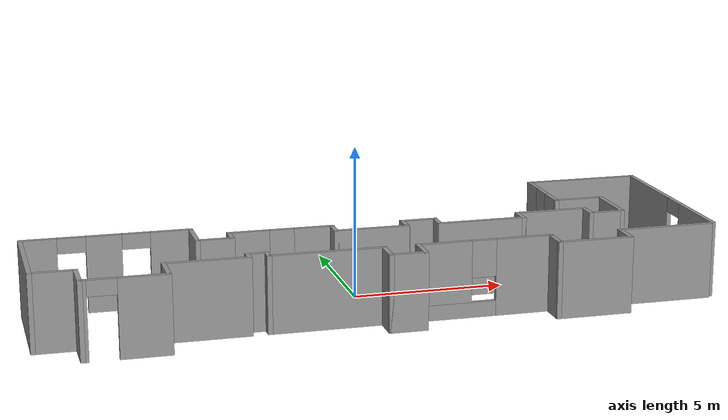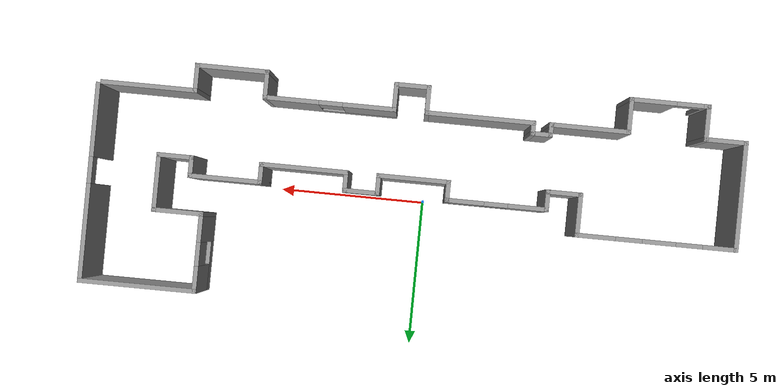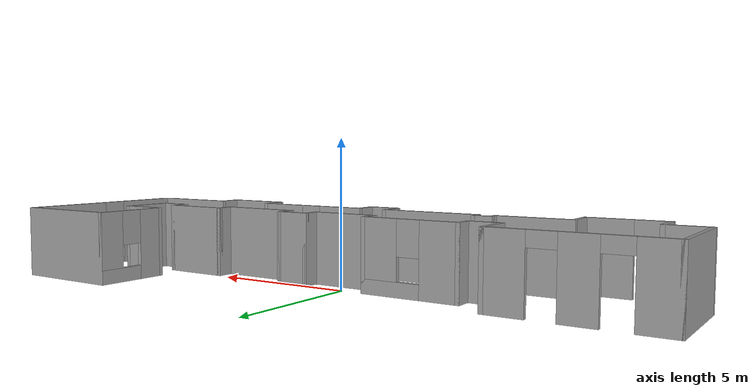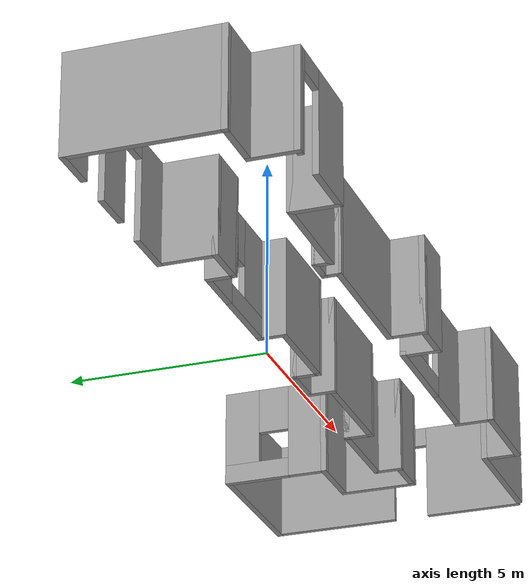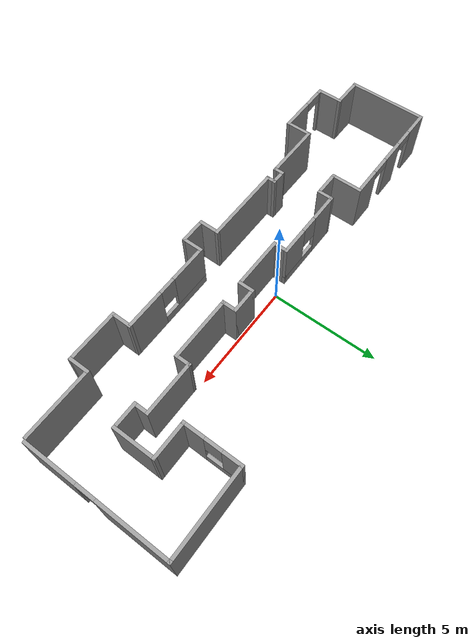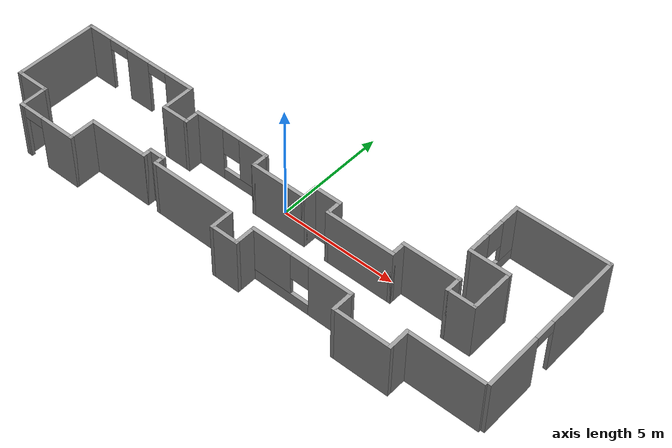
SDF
<?xml version='1.0'?>
<sdf version='1.6'>
  <model name='corridor_simple'>
    <pose frame=''>0.30069 -0.178171 0 0 -0 0</pose>
    <link name='Wall_0'>
      <collision name='Wall_0_Collision'>
        <geometry>
          <box>
            <size>3.25 0.15 2.5</size>
          </box>
        </geometry>
        <pose frame=''>0 0 1.25 0 -0 0</pose>
      </collision>
      <visual name='Wall_0_Visual'>
        <pose frame=''>0 0 1.25 0 -0 0</pose>
        <geometry>
          <box>
            <size>3.25 0.15 2.5</size>
          </box>
        </geometry>
        <material>
          <script>
            <uri>file://media/materials/scripts/gazebo.material</uri>
            <name>Gazebo/Grey</name>
          </script>
          <ambient>1 1 1 1</ambient>
        </material>
        <meta>
          <layer>0</layer>
        </meta>
      </visual>
      <pose frame=''>9.2 -2.8 0 0 -0 3.14159</pose>
    </link>
    <link name='Wall_1'>
      <collision name='Wall_1_Collision'>
        <geometry>
          <box>
            <size>1 0.15 2.5</size>
          </box>
        </geometry>
        <pose frame=''>0 0 1.25 0 -0 0</pose>
      </collision>
      <visual name='Wall_1_Visual'>
        <pose frame=''>0 0 1.25 0 -0 0</pose>
        <geometry>
          <box>
            <size>1 0.15 2.5</size>
          </box>
        </geometry>
        <material>
          <script>
            <uri>file://media/materials/scripts/gazebo.material</uri>
            <name>Gazebo/Grey</name>
          </script>
          <ambient>1 1 1 1</ambient>
        </material>
        <meta>
          <layer>0</layer>
        </meta>
      </visual>
      <pose frame=''>7.65 -3.225 0 0 0 -1.5708</pose>
    </link>
    <link name='Wall_12'>
      <collision name='Wall_12_Collision'>
        <geometry>
          <box>
            <size>1 0.15 2.5</size>
          </box>
        </geometry>
        <pose frame=''>0 0 1.25 0 -0 0</pose>
      </collision>
      <visual name='Wall_12_Visual'>
        <pose frame=''>0 0 1.25 0 -0 0</pose>
        <geometry>
          <box>
            <size>1 0.15 2.5</size>
          </box>
        </geometry>
        <material>
          <script>
            <uri>file://media/materials/scripts/gazebo.material</uri>
            <name>Gazebo/Grey</name>
          </script>
          <ambient>1 1 1 1</ambient>
        </material>
        <meta>
          <layer>0</layer>
        </meta>
      </visual>
      <pose frame=''>-0.15 -3.225 0 0 -0 1.5708</pose>
    </link>
    <link name='Wall_13'>
      <collision name='Wall_13_Collision'>
        <geometry>
          <box>
            <size>3.75 0.15 2.5</size>
          </box>
        </geometry>
        <pose frame=''>0 0 1.25 0 -0 0</pose>
      </collision>
      <visual name='Wall_13_Visual'>
        <pose frame=''>0 0 1.25 0 -0 0</pose>
        <geometry>
          <box>
            <size>3.75 0.15 2.5</size>
          </box>
        </geometry>
        <material>
          <script>
            <uri>file://media/materials/scripts/gazebo.material</uri>
            <name>Gazebo/Grey</name>
          </script>
          <ambient>1 1 1 1</ambient>
        </material>
        <meta>
          <layer>0</layer>
        </meta>
      </visual>
      <pose frame=''>-1.95 -2.8 0 0 -0 3.14159</pose>
    </link>
    <link name='Wall_14'>
      <collision name='Wall_14_Collision'>
        <geometry>
          <box>
            <size>0.5 0.15 2.5</size>
          </box>
        </geometry>
        <pose frame=''>0 0 1.25 0 -0 0</pose>
      </collision>
      <visual name='Wall_14_Visual'>
        <pose frame=''>0 0 1.25 0 -0 0</pose>
        <geometry>
          <box>
            <size>0.5 0.15 2.5</size>
          </box>
        </geometry>
        <material>
          <script>
            <uri>file://media/materials/scripts/gazebo.material</uri>
            <name>Gazebo/Grey</name>
          </script>
          <ambient>1 1 1 1</ambient>
        </material>
        <meta>
          <layer>0</layer>
        </meta>
      </visual>
      <pose frame=''>-3.75 -2.625 0 0 -0 1.5708</pose>
    </link>
    <link name='Wall_15'>
      <collision name='Wall_15_Collision'>
        <geometry>
          <box>
            <size>0.75 0.15 2.5</size>
          </box>
        </geometry>
        <pose frame=''>0 0 1.25 0 -0 0</pose>
      </collision>
      <visual name='Wall_15_Visual'>
        <pose frame=''>0 0 1.25 0 -0 0</pose>
        <geometry>
          <box>
            <size>0.75 0.15 2.5</size>
          </box>
        </geometry>
        <material>
          <script>
            <uri>file://media/materials/scripts/gazebo.material</uri>
            <name>Gazebo/Grey</name>
          </script>
          <ambient>1 1 1 1</ambient>
        </material>
        <meta>
          <layer>0</layer>
        </meta>
      </visual>
      <pose frame=''>-4.05 -2.45 0 0 -0 3.14159</pose>
    </link>
    <link name='Wall_16'>
      <collision name='Wall_16_Collision'>
        <geometry>
          <box>
            <size>0.5 0.15 2.5</size>
          </box>
        </geometry>
        <pose frame=''>0 0 1.25 0 -0 0</pose>
      </collision>
      <visual name='Wall_16_Visual'>
        <pose frame=''>0 0 1.25 0 -0 0</pose>
        <geometry>
          <box>
            <size>0.5 0.15 2.5</size>
          </box>
        </geometry>
        <material>
          <script>
            <uri>file://media/materials/scripts/gazebo.material</uri>
            <name>Gazebo/Grey</name>
          </script>
          <ambient>1 1 1 1</ambient>
        </material>
        <meta>
          <layer>0</layer>
        </meta>
      </visual>
      <pose frame=''>-4.35 -2.625 0 0 0 -1.5708</pose>
    </link>
    <link name='Wall_17'>
      <collision name='Wall_17_Collision'>
        <geometry>
          <box>
            <size>2.75 0.15 2.5</size>
          </box>
        </geometry>
        <pose frame=''>0 0 1.25 0 -0 0</pose>
      </collision>
      <visual name='Wall_17_Visual'>
        <pose frame=''>0 0 1.25 0 -0 0</pose>
        <geometry>
          <box>
            <size>2.75 0.15 2.5</size>
          </box>
        </geometry>
        <material>
          <script>
            <uri>file://media/materials/scripts/gazebo.material</uri>
            <name>Gazebo/Grey</name>
          </script>
          <ambient>1 1 1 1</ambient>
        </material>
        <meta>
          <layer>0</layer>
        </meta>
      </visual>
      <pose frame=''>-5.65 -2.8 0 0 -0 3.14159</pose>
    </link>
    <link name='Wall_18'>
      <collision name='Wall_18_Collision'>
        <geometry>
          <box>
            <size>1.25 0.15 2.5</size>
          </box>
        </geometry>
        <pose frame=''>0 0 1.25 0 -0 0</pose>
      </collision>
      <visual name='Wall_18_Visual'>
        <pose frame=''>0 0 1.25 0 -0 0</pose>
        <geometry>
          <box>
            <size>1.25 0.15 2.5</size>
          </box>
        </geometry>
        <material>
          <script>
            <uri>file://media/materials/scripts/gazebo.material</uri>
            <name>Gazebo/Grey</name>
          </script>
          <ambient>1 1 1 1</ambient>
        </material>
        <meta>
          <layer>0</layer>
        </meta>
      </visual>
      <pose frame=''>-6.95 -3.35 0 0 0 -1.5708</pose>
    </link>
    <link name='Wall_19'>
      <pose frame=''>-8.25 -3.9 0 0 -0 3.14159</pose>
      <visual name='Wall_19_Visual_0'>
        <pose frame=''>-0.576964 0 1.25 0 -0 0</pose>
        <geometry>
          <box>
            <size>1.59607 0.15 2.5</size>
          </box>
        </geometry>
        <material>
          <script>
            <uri>file://media/materials/scripts/gazebo.material</uri>
            <name>Gazebo/Grey</name>
          </script>
          <ambient>1 1 1 1</ambient>
        </material>
        <meta>
          <layer>0</layer>
        </meta>
      </visual>
      <collision name='Wall_19_Collision_0'>
        <geometry>
          <box>
            <size>1.59607 0.15 2.5</size>
          </box>
        </geometry>
        <pose frame=''>-0.576964 0 1.25 0 -0 0</pose>
      </collision>
      <visual name='Wall_19_Visual_1'>
        <pose frame=''>1.24804 0 1.25 0 -0 0</pose>
        <geometry>
          <box>
            <size>0.253927 0.15 2.5</size>
          </box>
        </geometry>
        <material>
          <script>
            <uri>file://media/materials/scripts/gazebo.material</uri>
            <name>Gazebo/Grey</name>
          </script>
          <ambient>1 1 1 1</ambient>
        </material>
        <meta>
          <layer>0</layer>
        </meta>
      </visual>
      <collision name='Wall_19_Collision_1'>
        <geometry>
          <box>
            <size>0.253927 0.15 2.5</size>
          </box>
        </geometry>
        <pose frame=''>1.24804 0 1.25 0 -0 0</pose>
      </collision>
      <visual name='Wall_19_Visual_2'>
        <pose frame=''>0.671073 0 2.25 0 -0 0</pose>
        <geometry>
          <box>
            <size>0.9 0.15 0.5</size>
          </box>
        </geometry>
        <material>
          <script>
            <uri>file://media/materials/scripts/gazebo.material</uri>
            <name>Gazebo/Grey</name>
          </script>
          <ambient>1 1 1 1</ambient>
        </material>
        <meta>
          <layer>0</layer>
        </meta>
      </visual>
      <collision name='Wall_19_Collision_2'>
        <geometry>
          <box>
            <size>0.9 0.15 0.5</size>
          </box>
        </geometry>
        <pose frame=''>0.671073 0 2.25 0 -0 0</pose>
      </collision>
    </link>
    <link name='Wall_2'>
      <collision name='Wall_2_Collision'>
        <geometry>
          <box>
            <size>2.5 0.15 2.5</size>
          </box>
        </geometry>
        <pose frame=''>0 0 1.25 0 -0 0</pose>
      </collision>
      <visual name='Wall_2_Visual'>
        <pose frame=''>0 0 1.25 0 -0 0</pose>
        <geometry>
          <box>
            <size>2.5 0.15 2.5</size>
          </box>
        </geometry>
        <material>
          <script>
            <uri>file://media/materials/scripts/gazebo.material</uri>
            <name>Gazebo/Grey</name>
          </script>
          <ambient>1 1 1 1</ambient>
        </material>
        <meta>
          <layer>0</layer>
        </meta>
      </visual>
      <pose frame=''>6.475 -3.65 0 0 -0 3.14159</pose>
    </link>
    <link name='Wall_20'>
      <collision name='Wall_20_Collision'>
        <geometry>
          <box>
            <size>1.25 0.15 2.5</size>
          </box>
        </geometry>
        <pose frame=''>0 0 1.25 0 -0 0</pose>
      </collision>
      <visual name='Wall_20_Visual'>
        <pose frame=''>0 0 1.25 0 -0 0</pose>
        <geometry>
          <box>
            <size>1.25 0.15 2.5</size>
          </box>
        </geometry>
        <material>
          <script>
            <uri>file://media/materials/scripts/gazebo.material</uri>
            <name>Gazebo/Grey</name>
          </script>
          <ambient>1 1 1 1</ambient>
        </material>
        <meta>
          <layer>0</layer>
        </meta>
      </visual>
      <pose frame=''>-9.55 -3.35 0 0 -0 1.5708</pose>
    </link>
    <link name='Wall_21'>
      <collision name='Wall_21_Collision'>
        <geometry>
          <box>
            <size>1.5 0.15 2.5</size>
          </box>
        </geometry>
        <pose frame=''>0 0 1.25 0 -0 0</pose>
      </collision>
      <visual name='Wall_21_Visual'>
        <pose frame=''>0 0 1.25 0 -0 0</pose>
        <geometry>
          <box>
            <size>1.5 0.15 2.5</size>
          </box>
        </geometry>
        <material>
          <script>
            <uri>file://media/materials/scripts/gazebo.material</uri>
            <name>Gazebo/Grey</name>
          </script>
          <ambient>1 1 1 1</ambient>
        </material>
        <meta>
          <layer>0</layer>
        </meta>
      </visual>
      <pose frame=''>-10.225 -2.8 0 0 -0 3.14159</pose>
    </link>
    <link name='Wall_22'>
      <collision name='Wall_22_Collision'>
        <geometry>
          <box>
            <size>3.75 0.15 2.5</size>
          </box>
        </geometry>
        <pose frame=''>0 0 1.25 0 -0 0</pose>
      </collision>
      <visual name='Wall_22_Visual'>
        <pose frame=''>0 0 1.25 0 -0 0</pose>
        <geometry>
          <box>
            <size>3.75 0.15 2.5</size>
          </box>
        </geometry>
        <material>
          <script>
            <uri>file://media/materials/scripts/gazebo.material</uri>
            <name>Gazebo/Grey</name>
          </script>
          <ambient>1 1 1 1</ambient>
        </material>
        <meta>
          <layer>0</layer>
        </meta>
      </visual>
      <pose frame=''>-10.9 -1 0 0 -0 1.5708</pose>
    </link>
    <link name='Wall_23'>
      <pose frame=''>-8.225 0.8 0 0 -0 0</pose>
      <visual name='Wall_23_Visual_0'>
        <pose frame=''>-2.14917 0 1.25 0 -0 0</pose>
        <geometry>
          <box>
            <size>1.20166 0.15 2.5</size>
          </box>
        </geometry>
        <material>
          <script>
            <uri>file://media/materials/scripts/gazebo.material</uri>
            <name>Gazebo/Grey</name>
          </script>
          <ambient>1 1 1 1</ambient>
        </material>
        <meta>
          <layer>0</layer>
        </meta>
      </visual>
      <collision name='Wall_23_Collision_0'>
        <geometry>
          <box>
            <size>1.20166 0.15 2.5</size>
          </box>
        </geometry>
        <pose frame=''>-2.14917 0 1.25 0 -0 0</pose>
      </collision>
      <visual name='Wall_23_Visual_1'>
        <pose frame=''>-0.082609 0 1.25 0 -0 0</pose>
        <geometry>
          <box>
            <size>1.13147 0.15 2.5</size>
          </box>
        </geometry>
        <material>
          <script>
            <uri>file://media/materials/scripts/gazebo.material</uri>
            <name>Gazebo/Grey</name>
          </script>
          <ambient>1 1 1 1</ambient>
        </material>
        <meta>
          <layer>0</layer>
        </meta>
      </visual>
      <collision name='Wall_23_Collision_1'>
        <geometry>
          <box>
            <size>1.13147 0.15 2.5</size>
          </box>
        </geometry>
        <pose frame=''>-0.082609 0 1.25 0 -0 0</pose>
      </collision>
      <visual name='Wall_23_Visual_2'>
        <pose frame=''>2.06656 0 1.25 0 -0 0</pose>
        <geometry>
          <box>
            <size>1.36687 0.15 2.5</size>
          </box>
        </geometry>
        <material>
          <script>
            <uri>file://media/materials/scripts/gazebo.material</uri>
            <name>Gazebo/Grey</name>
          </script>
          <ambient>1 1 1 1</ambient>
        </material>
        <meta>
          <layer>0</layer>
        </meta>
      </visual>
      <collision name='Wall_23_Collision_2'>
        <geometry>
          <box>
            <size>1.36687 0.15 2.5</size>
          </box>
        </geometry>
        <pose frame=''>2.06656 0 1.25 0 -0 0</pose>
      </collision>
      <visual name='Wall_23_Visual_3'>
        <pose frame=''>-1.09834 0 2.25 0 -0 0</pose>
        <geometry>
          <box>
            <size>0.9 0.15 0.5</size>
          </box>
        </geometry>
        <material>
          <script>
            <uri>file://media/materials/scripts/gazebo.material</uri>
            <name>Gazebo/Grey</name>
          </script>
          <ambient>1 1 1 1</ambient>
        </material>
        <meta>
          <layer>0</layer>
        </meta>
      </visual>
      <collision name='Wall_23_Collision_3'>
        <geometry>
          <box>
            <size>0.9 0.15 0.5</size>
          </box>
        </geometry>
        <pose frame=''>-1.09834 0 2.25 0 -0 0</pose>
      </collision>
      <visual name='Wall_23_Visual_4'>
        <pose frame=''>0.933126 0 2.25 0 -0 0</pose>
        <geometry>
          <box>
            <size>0.9 0.15 0.5</size>
          </box>
        </geometry>
        <material>
          <script>
            <uri>file://media/materials/scripts/gazebo.material</uri>
            <name>Gazebo/Grey</name>
          </script>
          <ambient>1 1 1 1</ambient>
        </material>
        <meta>
          <layer>0</layer>
        </meta>
      </visual>
      <collision name='Wall_23_Collision_4'>
        <geometry>
          <box>
            <size>0.9 0.15 0.5</size>
          </box>
        </geometry>
        <pose frame=''>0.933126 0 2.25 0 -0 0</pose>
      </collision>
    </link>
    <link name='Wall_24'>
      <collision name='Wall_24_Collision'>
        <geometry>
          <box>
            <size>1.5 0.15 2.5</size>
          </box>
        </geometry>
        <pose frame=''>0 0 1.25 0 -0 0</pose>
      </collision>
      <visual name='Wall_24_Visual'>
        <pose frame=''>0 0 1.25 0 -0 0</pose>
        <geometry>
          <box>
            <size>1.5 0.15 2.5</size>
          </box>
        </geometry>
        <material>
          <script>
            <uri>file://media/materials/scripts/gazebo.material</uri>
            <name>Gazebo/Grey</name>
          </script>
          <ambient>1 1 1 1</ambient>
        </material>
        <meta>
          <layer>0</layer>
        </meta>
      </visual>
      <pose frame=''>-5.55 0.125 0 0 0 -1.5708</pose>
    </link>
    <link name='Wall_25'>
      <collision name='Wall_25_Collision'>
        <geometry>
          <box>
            <size>1.25 0.15 2.5</size>
          </box>
        </geometry>
        <pose frame=''>0 0 1.25 0 -0 0</pose>
      </collision>
      <visual name='Wall_25_Visual'>
        <pose frame=''>0 0 1.25 0 -0 0</pose>
        <geometry>
          <box>
            <size>1.25 0.15 2.5</size>
          </box>
        </geometry>
        <material>
          <script>
            <uri>file://media/materials/scripts/gazebo.material</uri>
            <name>Gazebo/Grey</name>
          </script>
          <ambient>1 1 1 1</ambient>
        </material>
        <meta>
          <layer>0</layer>
        </meta>
      </visual>
      <pose frame=''>-5 -0.55 0 0 -0 0</pose>
    </link>
    <link name='Wall_26'>
      <collision name='Wall_26_Collision'>
        <geometry>
          <box>
            <size>0.75 0.15 2.5</size>
          </box>
        </geometry>
        <pose frame=''>0 0 1.25 0 -0 0</pose>
      </collision>
      <visual name='Wall_26_Visual'>
        <pose frame=''>0 0 1.25 0 -0 0</pose>
        <geometry>
          <box>
            <size>0.75 0.15 2.5</size>
          </box>
        </geometry>
        <material>
          <script>
            <uri>file://media/materials/scripts/gazebo.material</uri>
            <name>Gazebo/Grey</name>
          </script>
          <ambient>1 1 1 1</ambient>
        </material>
        <meta>
          <layer>0</layer>
        </meta>
      </visual>
      <pose frame=''>-4.45 -0.25 0 0 -0 1.5708</pose>
    </link>
    <link name='Wall_27'>
      <pose frame=''>-2.775 0.05 0 0 -0 0</pose>
      <visual name='Wall_27_Visual_0'>
        <pose frame=''>-1.0606 0 1.25 0 -0 0</pose>
        <geometry>
          <box>
            <size>1.37879 0.15 2.5</size>
          </box>
        </geometry>
        <material>
          <script>
            <uri>file://media/materials/scripts/gazebo.material</uri>
            <name>Gazebo/Grey</name>
          </script>
          <ambient>1 1 1 1</ambient>
        </material>
        <meta>
          <layer>0</layer>
        </meta>
      </visual>
      <collision name='Wall_27_Collision_0'>
        <geometry>
          <box>
            <size>1.37879 0.15 2.5</size>
          </box>
        </geometry>
        <pose frame=''>-1.0606 0 1.25 0 -0 0</pose>
      </collision>
      <visual name='Wall_27_Visual_1'>
        <pose frame=''>0.689397 0 0.25 0 -0 0</pose>
        <geometry>
          <box>
            <size>2.12121 0.15 0.5</size>
          </box>
        </geometry>
        <material>
          <script>
            <uri>file://media/materials/scripts/gazebo.material</uri>
            <name>Gazebo/Grey</name>
          </script>
          <ambient>1 1 1 1</ambient>
        </material>
        <meta>
          <layer>0</layer>
        </meta>
      </visual>
      <collision name='Wall_27_Collision_1'>
        <geometry>
          <box>
            <size>2.12121 0.15 0.5</size>
          </box>
        </geometry>
        <pose frame=''>0.689397 0 0.25 0 -0 0</pose>
      </collision>
      <visual name='Wall_27_Visual_2'>
        <pose frame=''>1.0894 0 1.5 0 -0 0</pose>
        <geometry>
          <box>
            <size>1.32121 0.15 2</size>
          </box>
        </geometry>
        <material>
          <script>
            <uri>file://media/materials/scripts/gazebo.material</uri>
            <name>Gazebo/Grey</name>
          </script>
          <ambient>1 1 1 1</ambient>
        </material>
        <meta>
          <layer>0</layer>
        </meta>
      </visual>
      <collision name='Wall_27_Collision_2'>
        <geometry>
          <box>
            <size>1.32121 0.15 2</size>
          </box>
        </geometry>
        <pose frame=''>1.0894 0 1.5 0 -0 0</pose>
      </collision>
      <visual name='Wall_27_Visual_3'>
        <pose frame=''>0.028793 0 1.9 0 -0 0</pose>
        <geometry>
          <box>
            <size>0.8 0.15 1.2</size>
          </box>
        </geometry>
        <material>
          <script>
            <uri>file://media/materials/scripts/gazebo.material</uri>
            <name>Gazebo/Grey</name>
          </script>
          <ambient>1 1 1 1</ambient>
        </material>
        <meta>
          <layer>0</layer>
        </meta>
      </visual>
      <collision name='Wall_27_Collision_3'>
        <geometry>
          <box>
            <size>0.8 0.15 1.2</size>
          </box>
        </geometry>
        <pose frame=''>0.028793 0 1.9 0 -0 0</pose>
      </collision>
    </link>
    <link name='Wall_28'>
      <collision name='Wall_28_Collision'>
        <geometry>
          <box>
            <size>0.75 0.15 2.5</size>
          </box>
        </geometry>
        <pose frame=''>0 0 1.25 0 -0 0</pose>
      </collision>
      <visual name='Wall_28_Visual'>
        <pose frame=''>0 0 1.25 0 -0 0</pose>
        <geometry>
          <box>
            <size>0.75 0.15 2.5</size>
          </box>
        </geometry>
        <material>
          <script>
            <uri>file://media/materials/scripts/gazebo.material</uri>
            <name>Gazebo/Grey</name>
          </script>
          <ambient>1 1 1 1</ambient>
        </material>
        <meta>
          <layer>0</layer>
        </meta>
      </visual>
      <pose frame=''>-1.1 -0.25 0 0 0 -1.5708</pose>
    </link>
    <link name='Wall_29'>
      <collision name='Wall_29_Collision'>
        <geometry>
          <box>
            <size>2.5 0.15 2.5</size>
          </box>
        </geometry>
        <pose frame=''>0 0 1.25 0 -0 0</pose>
      </collision>
      <visual name='Wall_29_Visual'>
        <pose frame=''>0 0 1.25 0 -0 0</pose>
        <geometry>
          <box>
            <size>2.5 0.15 2.5</size>
          </box>
        </geometry>
        <material>
          <script>
            <uri>file://media/materials/scripts/gazebo.material</uri>
            <name>Gazebo/Grey</name>
          </script>
          <ambient>1 1 1 1</ambient>
        </material>
        <meta>
          <layer>0</layer>
        </meta>
      </visual>
      <pose frame=''>0.075 -0.55 0 0 -0 0</pose>
    </link>
    <link name='Wall_3'>
      <collision name='Wall_3_Collision'>
        <geometry>
          <box>
            <size>1 0.15 2.5</size>
          </box>
        </geometry>
        <pose frame=''>0 0 1.25 0 -0 0</pose>
      </collision>
      <visual name='Wall_3_Visual'>
        <pose frame=''>0 0 1.25 0 -0 0</pose>
        <geometry>
          <box>
            <size>1 0.15 2.5</size>
          </box>
        </geometry>
        <material>
          <script>
            <uri>file://media/materials/scripts/gazebo.material</uri>
            <name>Gazebo/Grey</name>
          </script>
          <ambient>1 1 1 1</ambient>
        </material>
        <meta>
          <layer>0</layer>
        </meta>
      </visual>
      <pose frame=''>5.3 -3.225 0 0 -0 1.5708</pose>
    </link>
    <link name='Wall_30'>
      <collision name='Wall_30_Collision'>
        <geometry>
          <box>
            <size>0.75 0.15 2.5</size>
          </box>
        </geometry>
        <pose frame=''>0 0 1.25 0 -0 0</pose>
      </collision>
      <visual name='Wall_30_Visual'>
        <pose frame=''>0 0 1.25 0 -0 0</pose>
        <geometry>
          <box>
            <size>0.75 0.15 2.5</size>
          </box>
        </geometry>
        <material>
          <script>
            <uri>file://media/materials/scripts/gazebo.material</uri>
            <name>Gazebo/Grey</name>
          </script>
          <ambient>1 1 1 1</ambient>
        </material>
        <meta>
          <layer>0</layer>
        </meta>
      </visual>
      <pose frame=''>1.25 -0.25 0 0 -0 1.5708</pose>
    </link>
    <link name='Wall_31'>
      <collision name='Wall_31_Collision'>
        <geometry>
          <box>
            <size>1.25 0.15 2.5</size>
          </box>
        </geometry>
        <pose frame=''>0 0 1.25 0 -0 0</pose>
      </collision>
      <visual name='Wall_31_Visual'>
        <pose frame=''>0 0 1.25 0 -0 0</pose>
        <geometry>
          <box>
            <size>1.25 0.15 2.5</size>
          </box>
        </geometry>
        <material>
          <script>
            <uri>file://media/materials/scripts/gazebo.material</uri>
            <name>Gazebo/Grey</name>
          </script>
          <ambient>1 1 1 1</ambient>
        </material>
        <meta>
          <layer>0</layer>
        </meta>
      </visual>
      <pose frame=''>1.8 0.05 0 0 -0 0</pose>
    </link>
    <link name='Wall_32'>
      <collision name='Wall_32_Collision'>
        <geometry>
          <box>
            <size>0.75 0.15 2.5</size>
          </box>
        </geometry>
        <pose frame=''>0 0 1.25 0 -0 0</pose>
      </collision>
      <visual name='Wall_32_Visual'>
        <pose frame=''>0 0 1.25 0 -0 0</pose>
        <geometry>
          <box>
            <size>0.75 0.15 2.5</size>
          </box>
        </geometry>
        <material>
          <script>
            <uri>file://media/materials/scripts/gazebo.material</uri>
            <name>Gazebo/Grey</name>
          </script>
          <ambient>1 1 1 1</ambient>
        </material>
        <meta>
          <layer>0</layer>
        </meta>
      </visual>
      <pose frame=''>2.35 -0.25 0 0 0 -1.5708</pose>
    </link>
    <link name='Wall_33'>
      <collision name='Wall_33_Collision'>
        <geometry>
          <box>
            <size>3 0.15 2.5</size>
          </box>
        </geometry>
        <pose frame=''>0 0 1.25 0 -0 0</pose>
      </collision>
      <visual name='Wall_33_Visual'>
        <pose frame=''>0 0 1.25 0 -0 0</pose>
        <geometry>
          <box>
            <size>3 0.15 2.5</size>
          </box>
        </geometry>
        <material>
          <script>
            <uri>file://media/materials/scripts/gazebo.material</uri>
            <name>Gazebo/Grey</name>
          </script>
          <ambient>1 1 1 1</ambient>
        </material>
        <meta>
          <layer>0</layer>
        </meta>
      </visual>
      <pose frame=''>3.775 -0.55 0 0 -0 0</pose>
    </link>
    <link name='Wall_34'>
      <collision name='Wall_34_Collision'>
        <geometry>
          <box>
            <size>0.75 0.15 2.5</size>
          </box>
        </geometry>
        <pose frame=''>0 0 1.25 0 -0 0</pose>
      </collision>
      <visual name='Wall_34_Visual'>
        <pose frame=''>0 0 1.25 0 -0 0</pose>
        <geometry>
          <box>
            <size>0.75 0.15 2.5</size>
          </box>
        </geometry>
        <material>
          <script>
            <uri>file://media/materials/scripts/gazebo.material</uri>
            <name>Gazebo/Grey</name>
          </script>
          <ambient>1 1 1 1</ambient>
        </material>
        <meta>
          <layer>0</layer>
        </meta>
      </visual>
      <pose frame=''>5.2 -0.25 0 0 -0 1.5708</pose>
    </link>
    <link name='Wall_35'>
      <collision name='Wall_35_Collision'>
        <geometry>
          <box>
            <size>2.5 0.15 2.5</size>
          </box>
        </geometry>
        <pose frame=''>0 0 1.25 0 -0 0</pose>
      </collision>
      <visual name='Wall_35_Visual'>
        <pose frame=''>0 0 1.25 0 -0 0</pose>
        <geometry>
          <box>
            <size>2.5 0.15 2.5</size>
          </box>
        </geometry>
        <material>
          <script>
            <uri>file://media/materials/scripts/gazebo.material</uri>
            <name>Gazebo/Grey</name>
          </script>
          <ambient>1 1 1 1</ambient>
        </material>
        <meta>
          <layer>0</layer>
        </meta>
      </visual>
      <pose frame=''>6.375 0.05 0 0 -0 0</pose>
    </link>
    <link name='Wall_36'>
      <collision name='Wall_36_Collision'>
        <geometry>
          <box>
            <size>0.75 0.15 2.5</size>
          </box>
        </geometry>
        <pose frame=''>0 0 1.25 0 -0 0</pose>
      </collision>
      <visual name='Wall_36_Visual'>
        <pose frame=''>0 0 1.25 0 -0 0</pose>
        <geometry>
          <box>
            <size>0.75 0.15 2.5</size>
          </box>
        </geometry>
        <material>
          <script>
            <uri>file://media/materials/scripts/gazebo.material</uri>
            <name>Gazebo/Grey</name>
          </script>
          <ambient>1 1 1 1</ambient>
        </material>
        <meta>
          <layer>0</layer>
        </meta>
      </visual>
      <pose frame=''>7.55 -0.25 0 0 0 -1.5708</pose>
    </link>
    <link name='Wall_37'>
      <collision name='Wall_37_Collision'>
        <geometry>
          <box>
            <size>1.25 0.15 2.5</size>
          </box>
        </geometry>
        <pose frame=''>0 0 1.25 0 -0 0</pose>
      </collision>
      <visual name='Wall_37_Visual'>
        <pose frame=''>0 0 1.25 0 -0 0</pose>
        <geometry>
          <box>
            <size>1.25 0.15 2.5</size>
          </box>
        </geometry>
        <material>
          <script>
            <uri>file://media/materials/scripts/gazebo.material</uri>
            <name>Gazebo/Grey</name>
          </script>
          <ambient>1 1 1 1</ambient>
        </material>
        <meta>
          <layer>0</layer>
        </meta>
      </visual>
      <pose frame=''>8.1 -0.55 0 0 -0 0</pose>
    </link>
    <link name='Wall_38'>
      <collision name='Wall_38_Collision'>
        <geometry>
          <box>
            <size>2 0.15 2.5</size>
          </box>
        </geometry>
        <pose frame=''>0 0 1.25 0 -0 0</pose>
      </collision>
      <visual name='Wall_38_Visual'>
        <pose frame=''>0 0 1.25 0 -0 0</pose>
        <geometry>
          <box>
            <size>2 0.15 2.5</size>
          </box>
        </geometry>
        <material>
          <script>
            <uri>file://media/materials/scripts/gazebo.material</uri>
            <name>Gazebo/Grey</name>
          </script>
          <ambient>1 1 1 1</ambient>
        </material>
        <meta>
          <layer>0</layer>
        </meta>
      </visual>
      <pose frame=''>8.65 0.375 0 0 -0 1.5708</pose>
    </link>
    <link name='Wall_39'>
      <collision name='Wall_39_Collision'>
        <geometry>
          <box>
            <size>1.75 0.15 2.5</size>
          </box>
        </geometry>
        <pose frame=''>0 0 1.25 0 -0 0</pose>
      </collision>
      <visual name='Wall_39_Visual'>
        <pose frame=''>0 0 1.25 0 -0 0</pose>
        <geometry>
          <box>
            <size>1.75 0.15 2.5</size>
          </box>
        </geometry>
        <material>
          <script>
            <uri>file://media/materials/scripts/gazebo.material</uri>
            <name>Gazebo/Grey</name>
          </script>
          <ambient>1 1 1 1</ambient>
        </material>
        <meta>
          <layer>0</layer>
        </meta>
      </visual>
      <pose frame=''>7.85 1.3 0 0 -0 3.14159</pose>
    </link>
    <link name='Wall_4'>
      <pose frame=''>3.125 -2.8 0 0 -0 3.14159</pose>
      <visual name='Wall_4_Visual_0'>
        <pose frame=''>-1.30587 0 1.25 0 -0 0</pose>
        <geometry>
          <box>
            <size>1.88827 0.15 2.5</size>
          </box>
        </geometry>
        <material>
          <script>
            <uri>file://media/materials/scripts/gazebo.material</uri>
            <name>Gazebo/Grey</name>
          </script>
          <ambient>1 1 1 1</ambient>
        </material>
        <meta>
          <layer>0</layer>
        </meta>
      </visual>
      <collision name='Wall_4_Collision_0'>
        <geometry>
          <box>
            <size>1.88827 0.15 2.5</size>
          </box>
        </geometry>
        <pose frame=''>-1.30587 0 1.25 0 -0 0</pose>
      </collision>
      <visual name='Wall_4_Visual_1'>
        <pose frame=''>0.944135 0 0.25 0 -0 0</pose>
        <geometry>
          <box>
            <size>2.61173 0.15 0.5</size>
          </box>
        </geometry>
        <material>
          <script>
            <uri>file://media/materials/scripts/gazebo.material</uri>
            <name>Gazebo/Grey</name>
          </script>
          <ambient>1 1 1 1</ambient>
        </material>
        <meta>
          <layer>0</layer>
        </meta>
      </visual>
      <collision name='Wall_4_Collision_1'>
        <geometry>
          <box>
            <size>2.61173 0.15 0.5</size>
          </box>
        </geometry>
        <pose frame=''>0.944135 0 0.25 0 -0 0</pose>
      </collision>
      <visual name='Wall_4_Visual_2'>
        <pose frame=''>1.34414 0 1.5 0 -0 0</pose>
        <geometry>
          <box>
            <size>1.81173 0.15 2</size>
          </box>
        </geometry>
        <material>
          <script>
            <uri>file://media/materials/scripts/gazebo.material</uri>
            <name>Gazebo/Grey</name>
          </script>
          <ambient>1 1 1 1</ambient>
        </material>
        <meta>
          <layer>0</layer>
        </meta>
      </visual>
      <collision name='Wall_4_Collision_2'>
        <geometry>
          <box>
            <size>1.81173 0.15 2</size>
          </box>
        </geometry>
        <pose frame=''>1.34414 0 1.5 0 -0 0</pose>
      </collision>
      <visual name='Wall_4_Visual_3'>
        <pose frame=''>0.038271 0 1.9 0 -0 0</pose>
        <geometry>
          <box>
            <size>0.8 0.15 1.2</size>
          </box>
        </geometry>
        <material>
          <script>
            <uri>file://media/materials/scripts/gazebo.material</uri>
            <name>Gazebo/Grey</name>
          </script>
          <ambient>1 1 1 1</ambient>
        </material>
        <meta>
          <layer>0</layer>
        </meta>
      </visual>
      <collision name='Wall_4_Collision_3'>
        <geometry>
          <box>
            <size>0.8 0.15 1.2</size>
          </box>
        </geometry>
        <pose frame=''>0.038271 0 1.9 0 -0 0</pose>
      </collision>
    </link>
    <link name='Wall_40'>
      <pose frame=''>7.05 2.6 0 0 -0 1.5708</pose>
      <visual name='Wall_40_Visual_0'>
        <pose frame=''>-0.862111 0 1.25 0 -0 0</pose>
        <geometry>
          <box>
            <size>1.02578 0.15 2.5</size>
          </box>
        </geometry>
        <material>
          <script>
            <uri>file://media/materials/scripts/gazebo.material</uri>
            <name>Gazebo/Grey</name>
          </script>
          <ambient>1 1 1 1</ambient>
        </material>
        <meta>
          <layer>0</layer>
        </meta>
      </visual>
      <collision name='Wall_40_Collision_0'>
        <geometry>
          <box>
            <size>1.02578 0.15 2.5</size>
          </box>
        </geometry>
        <pose frame=''>-0.862111 0 1.25 0 -0 0</pose>
      </collision>
      <visual name='Wall_40_Visual_1'>
        <pose frame=''>0.512889 0 0.25 0 -0 0</pose>
        <geometry>
          <box>
            <size>1.72422 0.15 0.5</size>
          </box>
        </geometry>
        <material>
          <script>
            <uri>file://media/materials/scripts/gazebo.material</uri>
            <name>Gazebo/Grey</name>
          </script>
          <ambient>1 1 1 1</ambient>
        </material>
        <meta>
          <layer>0</layer>
        </meta>
      </visual>
      <collision name='Wall_40_Collision_1'>
        <geometry>
          <box>
            <size>1.72422 0.15 0.5</size>
          </box>
        </geometry>
        <pose frame=''>0.512889 0 0.25 0 -0 0</pose>
      </collision>
      <visual name='Wall_40_Visual_2'>
        <pose frame=''>0.912889 0 1.5 0 -0 0</pose>
        <geometry>
          <box>
            <size>0.924222 0.15 2</size>
          </box>
        </geometry>
        <material>
          <script>
            <uri>file://media/materials/scripts/gazebo.material</uri>
            <name>Gazebo/Grey</name>
          </script>
          <ambient>1 1 1 1</ambient>
        </material>
        <meta>
          <layer>0</layer>
        </meta>
      </visual>
      <collision name='Wall_40_Collision_2'>
        <geometry>
          <box>
            <size>0.924222 0.15 2</size>
          </box>
        </geometry>
        <pose frame=''>0.912889 0 1.5 0 -0 0</pose>
      </collision>
      <visual name='Wall_40_Visual_3'>
        <pose frame=''>0.050778 0 1.9 0 -0 0</pose>
        <geometry>
          <box>
            <size>0.8 0.15 1.2</size>
          </box>
        </geometry>
        <material>
          <script>
            <uri>file://media/materials/scripts/gazebo.material</uri>
            <name>Gazebo/Grey</name>
          </script>
          <ambient>1 1 1 1</ambient>
        </material>
        <meta>
          <layer>0</layer>
        </meta>
      </visual>
      <collision name='Wall_40_Collision_3'>
        <geometry>
          <box>
            <size>0.8 0.15 1.2</size>
          </box>
        </geometry>
        <pose frame=''>0.050778 0 1.9 0 -0 0</pose>
      </collision>
    </link>
    <link name='Wall_41'>
      <collision name='Wall_41_Collision'>
        <geometry>
          <box>
            <size>4 0.15 2.5</size>
          </box>
        </geometry>
        <pose frame=''>0 0 1.25 0 -0 0</pose>
      </collision>
      <visual name='Wall_41_Visual'>
        <pose frame=''>0 0 1.25 0 -0 0</pose>
        <geometry>
          <box>
            <size>4 0.15 2.5</size>
          </box>
        </geometry>
        <material>
          <script>
            <uri>file://media/materials/scripts/gazebo.material</uri>
            <name>Gazebo/Grey</name>
          </script>
          <ambient>1 1 1 1</ambient>
        </material>
        <meta>
          <layer>0</layer>
        </meta>
      </visual>
      <pose frame=''>8.975 3.9 0 0 -0 0</pose>
    </link>
    <link name='Wall_42'>
      <pose frame=''>10.9 0.6 0 0 0 -1.5708</pose>
      <visual name='Wall_42_Visual_0'>
        <pose frame=''>-1.7009 0 1.25 0 -0 0</pose>
        <geometry>
          <box>
            <size>3.34819 0.15 2.5</size>
          </box>
        </geometry>
        <material>
          <script>
            <uri>file://media/materials/scripts/gazebo.material</uri>
            <name>Gazebo/Grey</name>
          </script>
          <ambient>1 1 1 1</ambient>
        </material>
        <meta>
          <layer>0</layer>
        </meta>
      </visual>
      <collision name='Wall_42_Collision_0'>
        <geometry>
          <box>
            <size>3.34819 0.15 2.5</size>
          </box>
        </geometry>
        <pose frame=''>-1.7009 0 1.25 0 -0 0</pose>
      </collision>
      <visual name='Wall_42_Visual_1'>
        <pose frame=''>2.1241 0 1.25 0 -0 0</pose>
        <geometry>
          <box>
            <size>2.50181 0.15 2.5</size>
          </box>
        </geometry>
        <material>
          <script>
            <uri>file://media/materials/scripts/gazebo.material</uri>
            <name>Gazebo/Grey</name>
          </script>
          <ambient>1 1 1 1</ambient>
        </material>
        <meta>
          <layer>0</layer>
        </meta>
      </visual>
      <collision name='Wall_42_Collision_1'>
        <geometry>
          <box>
            <size>2.50181 0.15 2.5</size>
          </box>
        </geometry>
        <pose frame=''>2.1241 0 1.25 0 -0 0</pose>
      </collision>
      <visual name='Wall_42_Visual_2'>
        <pose frame=''>0.423191 0 2.25 0 -0 0</pose>
        <geometry>
          <box>
            <size>0.9 0.15 0.5</size>
          </box>
        </geometry>
        <material>
          <script>
            <uri>file://media/materials/scripts/gazebo.material</uri>
            <name>Gazebo/Grey</name>
          </script>
          <ambient>1 1 1 1</ambient>
        </material>
        <meta>
          <layer>0</layer>
        </meta>
      </visual>
      <collision name='Wall_42_Collision_2'>
        <geometry>
          <box>
            <size>0.9 0.15 0.5</size>
          </box>
        </geometry>
        <pose frame=''>0.423191 0 2.25 0 -0 0</pose>
      </collision>
    </link>
    <link name='Wall_5'>
      <collision name='Wall_5_Collision'>
        <geometry>
          <box>
            <size>1 0.15 2.5</size>
          </box>
        </geometry>
        <pose frame=''>0 0 1.25 0 -0 0</pose>
      </collision>
      <visual name='Wall_5_Visual'>
        <pose frame=''>0 0 1.25 0 -0 0</pose>
        <geometry>
          <box>
            <size>1 0.15 2.5</size>
          </box>
        </geometry>
        <material>
          <script>
            <uri>file://media/materials/scripts/gazebo.material</uri>
            <name>Gazebo/Grey</name>
          </script>
          <ambient>1 1 1 1</ambient>
        </material>
        <meta>
          <layer>0</layer>
        </meta>
      </visual>
      <pose frame=''>0.95 -3.225 0 0 0 -1.5708</pose>
    </link>
    <link name='Wall_9'>
      <collision name='Wall_9_Collision'>
        <geometry>
          <box>
            <size>1.25 0.15 2.5</size>
          </box>
        </geometry>
        <pose frame=''>0 0 1.25 0 -0 0</pose>
      </collision>
      <visual name='Wall_9_Visual'>
        <pose frame=''>0 0 1.25 0 -0 0</pose>
        <geometry>
          <box>
            <size>1.25 0.15 2.5</size>
          </box>
        </geometry>
        <material>
          <script>
            <uri>file://media/materials/scripts/gazebo.material</uri>
            <name>Gazebo/Grey</name>
          </script>
          <ambient>1 1 1 1</ambient>
        </material>
        <meta>
          <layer>0</layer>
        </meta>
      </visual>
      <pose frame=''>0.4 -3.65 0 0 -0 3.14159</pose>
    </link>
    <static>1</static>
  </model>
</sdf>
